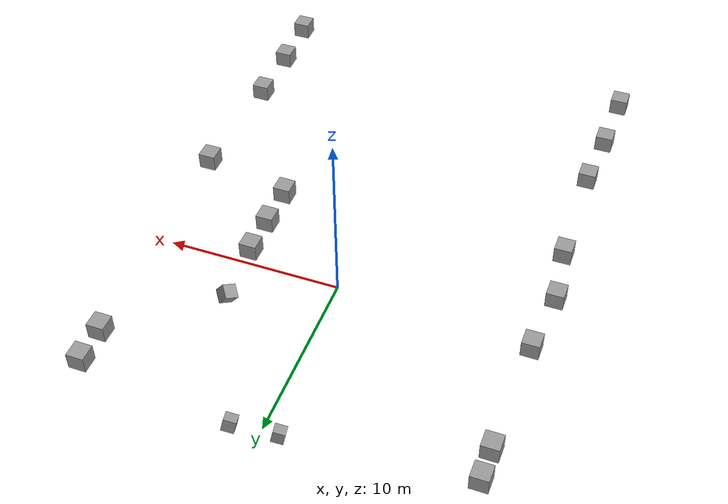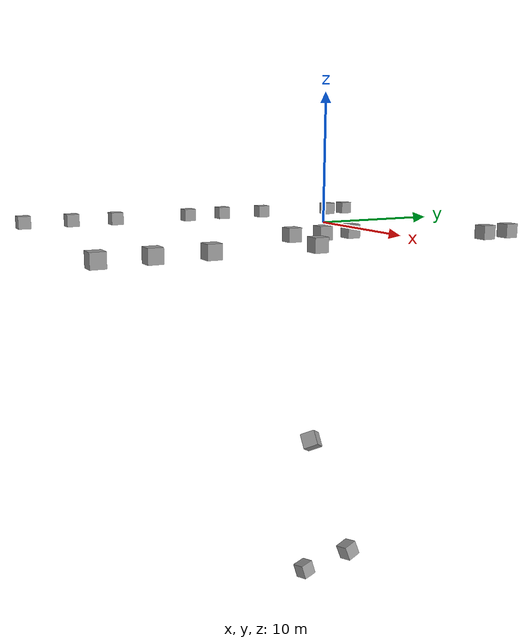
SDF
<sdf version="1.7">
 <world name="world">
  <model name="unit_box">
   <link name="link">
    <inertial>
     <mass>1</mass>
     <inertia>
      <ixx>0.166667</ixx>
      <ixy>0</ixy>
      <ixz>0</ixz>
      <iyy>0.166667</iyy>
      <iyz>0</iyz>
      <izz>0.166667</izz>
     </inertia>
    </inertial>
    <visual name="visual">
     <geometry><box><size>1 1 1</size></box></geometry>
     <material>
      <script><name>Gazebo/Grey</name><uri>file://media/materials/scripts/gazebo.material</uri></script>
      <shader type="pixel"><normal_map>__default__</normal_map></shader>
      <ambient>0.8 0.8 0.8 1</ambient>
      <diffuse>0.7 0.7 0.7 1</diffuse>
      <specular>0.01 0.01 0.01 1</specular>
      <emissive>0 0 0 1</emissive>
     </material>
    </visual>
    <collision name="collision">
     <geometry><box><size>1 1 1</size></box></geometry>
     <surface>
      <friction>
       <ode><mu>1</mu><mu2>1</mu2><fdir1>0 0 0</fdir1><slip1>0</slip1><slip2>0</slip2></ode>
       <torsional>
        <coefficient>1</coefficient>
        <patch_radius>0</patch_radius>
        <surface_radius>0</surface_radius>
        <use_patch_radius>1</use_patch_radius>
        <ode><slip>0</slip></ode>
       </torsional>
      </friction>
      <bounce><restitution_coefficient>0</restitution_coefficient><threshold>1e+06</threshold></bounce>
      <contact>
       <collide_without_contact>0</collide_without_contact>
       <collide_without_contact_bitmask>1</collide_without_contact_bitmask>
       <collide_bitmask>1</collide_bitmask>
       <ode>
        <soft_cfm>0</soft_cfm>
        <soft_erp>0.2</soft_erp>
        <kp>1e+13</kp>
        <kd>1</kd>
        <max_vel>0.01</max_vel>
        <min_depth>0</min_depth>
       </ode>
       <bullet>
        <split_impulse>1</split_impulse>
        <split_impulse_penetration_threshold>-0.01</split_impulse_penetration_threshold>
        <soft_cfm>0</soft_cfm>
        <soft_erp>0.2</soft_erp>
        <kp>1e+13</kp>
        <kd>1</kd>
       </bullet>
      </contact>
     </surface>
    </collision>
   </link>
   <static>1</static>
   <pose>7.61681 -5.87958 -24.7739 -1.38583 -0.219453 0.182002</pose>
  </model>
  <model name="unit_box_0">
   <link name="link">
    <inertial>
     <mass>1</mass>
     <inertia>
      <ixx>0.166667</ixx>
      <ixy>0</ixy>
      <ixz>0</ixz>
      <iyy>0.166667</iyy>
      <iyz>0</iyz>
      <izz>0.166667</izz>
     </inertia>
    </inertial>
    <visual name="visual">
     <geometry><box><size>1 1 1</size></box></geometry>
     <material>
      <script><name>Gazebo/Grey</name><uri>file://media/materials/scripts/gazebo.material</uri></script>
      <shader type="pixel"><normal_map>__default__</normal_map></shader>
      <ambient>0.8 0.8 0.8 1</ambient>
      <diffuse>0.7 0.7 0.7 1</diffuse>
      <specular>0.01 0.01 0.01 1</specular>
      <emissive>0 0 0 1</emissive>
     </material>
    </visual>
    <collision name="collision">
     <geometry><box><size>1 1 1</size></box></geometry>
     <surface>
      <friction>
       <ode><mu>1</mu><mu2>1</mu2><fdir1>0 0 0</fdir1><slip1>0</slip1><slip2>0</slip2></ode>
       <torsional>
        <coefficient>1</coefficient>
        <patch_radius>0</patch_radius>
        <surface_radius>0</surface_radius>
        <use_patch_radius>1</use_patch_radius>
        <ode><slip>0</slip></ode>
       </torsional>
      </friction>
      <bounce><restitution_coefficient>0</restitution_coefficient><threshold>1e+06</threshold></bounce>
      <contact>
       <collide_without_contact>0</collide_without_contact>
       <collide_without_contact_bitmask>1</collide_without_contact_bitmask>
       <collide_bitmask>1</collide_bitmask>
       <ode>
        <soft_cfm>0</soft_cfm>
        <soft_erp>0.2</soft_erp>
        <kp>1e+13</kp>
        <kd>1</kd>
        <max_vel>0.01</max_vel>
        <min_depth>0</min_depth>
       </ode>
       <bullet>
        <split_impulse>1</split_impulse>
        <split_impulse_penetration_threshold>-0.01</split_impulse_penetration_threshold>
        <soft_cfm>0</soft_cfm>
        <soft_erp>0.2</soft_erp>
        <kp>1e+13</kp>
        <kd>1</kd>
       </bullet>
      </contact>
     </surface>
    </collision>
   </link>
   <static>1</static>
   <pose>11.6284 -7.88913 -12.979 -0.536818 -0.409813 0.888293</pose>
  </model>
  <model name="unit_box_clone">
   <link name="link">
    <inertial>
     <mass>1</mass>
     <inertia>
      <ixx>0.166667</ixx>
      <ixy>0</ixy>
      <ixz>0</ixz>
      <iyy>0.166667</iyy>
      <iyz>0</iyz>
      <izz>0.166667</izz>
     </inertia>
    </inertial>
    <visual name="visual">
     <geometry><box><size>1 1 1</size></box></geometry>
     <material>
      <script><name>Gazebo/Grey</name><uri>file://media/materials/scripts/gazebo.material</uri></script>
      <shader type="pixel"><normal_map>__default__</normal_map></shader>
      <ambient>0.8 0.8 0.8 1</ambient>
      <diffuse>0.7 0.7 0.7 1</diffuse>
      <specular>0.01 0.01 0.01 1</specular>
      <emissive>0 0 0 1</emissive>
     </material>
    </visual>
    <collision name="collision">
     <geometry><box><size>1 1 1</size></box></geometry>
     <surface>
      <friction>
       <ode><mu>1</mu><mu2>1</mu2><fdir1>0 0 0</fdir1><slip1>0</slip1><slip2>0</slip2></ode>
       <torsional>
        <coefficient>1</coefficient>
        <patch_radius>0</patch_radius>
        <surface_radius>0</surface_radius>
        <use_patch_radius>1</use_patch_radius>
        <ode><slip>0</slip></ode>
       </torsional>
      </friction>
      <bounce><restitution_coefficient>0</restitution_coefficient><threshold>1e+06</threshold></bounce>
      <contact>
       <collide_without_contact>0</collide_without_contact>
       <collide_without_contact_bitmask>1</collide_without_contact_bitmask>
       <collide_bitmask>1</collide_bitmask>
       <ode>
        <soft_cfm>0</soft_cfm>
        <soft_erp>0.2</soft_erp>
        <kp>1e+13</kp>
        <kd>1</kd>
        <max_vel>0.01</max_vel>
        <min_depth>0</min_depth>
       </ode>
       <bullet>
        <split_impulse>1</split_impulse>
        <split_impulse_penetration_threshold>-0.01</split_impulse_penetration_threshold>
        <soft_cfm>0</soft_cfm>
        <soft_erp>0.2</soft_erp>
        <kp>1e+13</kp>
        <kd>1</kd>
       </bullet>
      </contact>
     </surface>
    </collision>
   </link>
   <static>1</static>
   <pose>10.5023 -4 -22.3227 -1.30638 -0.215624 0.16488</pose>
  </model>
  <model name="unit_box_1">
   <link name="link">
    <inertial>
     <mass>1</mass>
     <inertia>
      <ixx>0.166667</ixx>
      <ixy>0</ixy>
      <ixz>0</ixz>
      <iyy>0.166667</iyy>
      <iyz>0</iyz>
      <izz>0.166667</izz>
     </inertia>
    </inertial>
    <gravity>0</gravity>
    <visual name="visual">
     <geometry><box><size>1 1 1</size></box></geometry>
     <material>
      <script><name>Gazebo/Grey</name><uri>file://media/materials/scripts/gazebo.material</uri></script>
      <shader type="pixel"><normal_map>__default__</normal_map></shader>
      <ambient>0.8 0.8 0.8 1</ambient>
      <diffuse>0.7 0.7 0.7 1</diffuse>
      <specular>0.01 0.01 0.01 1</specular>
      <emissive>0 0 0 1</emissive>
     </material>
    </visual>
    <collision name="collision">
     <geometry><box><size>1 1 1</size></box></geometry>
     <surface>
      <friction>
       <ode><mu>1</mu><mu2>1</mu2><fdir1>0 0 0</fdir1><slip1>0</slip1><slip2>0</slip2></ode>
       <torsional>
        <coefficient>1</coefficient>
        <patch_radius>0</patch_radius>
        <surface_radius>0</surface_radius>
        <use_patch_radius>1</use_patch_radius>
        <ode><slip>0</slip></ode>
       </torsional>
      </friction>
      <bounce><restitution_coefficient>0</restitution_coefficient><threshold>1e+06</threshold></bounce>
      <contact>
       <collide_without_contact>0</collide_without_contact>
       <collide_without_contact_bitmask>1</collide_without_contact_bitmask>
       <collide_bitmask>1</collide_bitmask>
       <ode>
        <soft_cfm>0</soft_cfm>
        <soft_erp>0.2</soft_erp>
        <kp>1e+13</kp>
        <kd>1</kd>
        <max_vel>0.01</max_vel>
        <min_depth>0</min_depth>
       </ode>
       <bullet>
        <split_impulse>1</split_impulse>
        <split_impulse_penetration_threshold>-0.01</split_impulse_penetration_threshold>
        <soft_cfm>0</soft_cfm>
        <soft_erp>0.2</soft_erp>
        <kp>1e+13</kp>
        <kd>1</kd>
       </bullet>
      </contact>
     </surface>
    </collision>
   </link>
   <static>1</static>
   <pose>11.2103 -7.35762 0 0 -0 0</pose>
  </model>
  <model name="unit_box_1_clone">
   <link name="link">
    <inertial>
     <mass>1</mass>
     <inertia>
      <ixx>0.166667</ixx>
      <ixy>0</ixy>
      <ixz>0</ixz>
      <iyy>0.166667</iyy>
      <iyz>0</iyz>
      <izz>0.166667</izz>
     </inertia>
    </inertial>
    <gravity>0</gravity>
    <visual name="visual">
     <geometry><box><size>1 1 1</size></box></geometry>
     <material>
      <script><name>Gazebo/Grey</name><uri>file://media/materials/scripts/gazebo.material</uri></script>
      <shader type="pixel"><normal_map>__default__</normal_map></shader>
      <ambient>0.8 0.8 0.8 1</ambient>
      <diffuse>0.7 0.7 0.7 1</diffuse>
      <specular>0.01 0.01 0.01 1</specular>
      <emissive>0 0 0 1</emissive>
     </material>
    </visual>
    <collision name="collision">
     <geometry><box><size>1 1 1</size></box></geometry>
     <surface>
      <friction>
       <ode><mu>1</mu><mu2>1</mu2><fdir1>0 0 0</fdir1><slip1>0</slip1><slip2>0</slip2></ode>
       <torsional>
        <coefficient>1</coefficient>
        <patch_radius>0</patch_radius>
        <surface_radius>0</surface_radius>
        <use_patch_radius>1</use_patch_radius>
        <ode><slip>0</slip></ode>
       </torsional>
      </friction>
      <bounce><restitution_coefficient>0</restitution_coefficient><threshold>1e+06</threshold></bounce>
      <contact>
       <collide_without_contact>0</collide_without_contact>
       <collide_without_contact_bitmask>1</collide_without_contact_bitmask>
       <collide_bitmask>1</collide_bitmask>
       <ode>
        <soft_cfm>0</soft_cfm>
        <soft_erp>0.2</soft_erp>
        <kp>1e+13</kp>
        <kd>1</kd>
        <max_vel>0.01</max_vel>
        <min_depth>0</min_depth>
       </ode>
       <bullet>
        <split_impulse>1</split_impulse>
        <split_impulse_penetration_threshold>-0.01</split_impulse_penetration_threshold>
        <soft_cfm>0</soft_cfm>
        <soft_erp>0.2</soft_erp>
        <kp>1e+13</kp>
        <kd>1</kd>
       </bullet>
      </contact>
     </surface>
    </collision>
   </link>
   <static>1</static>
   <pose>10.9487 -14.6494 0 0 -0 0</pose>
  </model>
  <model name="unit_box_1_clone_0">
   <link name="link">
    <inertial>
     <mass>1</mass>
     <inertia>
      <ixx>0.166667</ixx>
      <ixy>0</ixy>
      <ixz>0</ixz>
      <iyy>0.166667</iyy>
      <iyz>0</iyz>
      <izz>0.166667</izz>
     </inertia>
    </inertial>
    <gravity>0</gravity>
    <visual name="visual">
     <geometry><box><size>1 1 1</size></box></geometry>
     <material>
      <script><name>Gazebo/Grey</name><uri>file://media/materials/scripts/gazebo.material</uri></script>
      <shader type="pixel"><normal_map>__default__</normal_map></shader>
      <ambient>0.8 0.8 0.8 1</ambient>
      <diffuse>0.7 0.7 0.7 1</diffuse>
      <specular>0.01 0.01 0.01 1</specular>
      <emissive>0 0 0 1</emissive>
     </material>
    </visual>
    <collision name="collision">
     <geometry><box><size>1 1 1</size></box></geometry>
     <surface>
      <friction>
       <ode><mu>1</mu><mu2>1</mu2><fdir1>0 0 0</fdir1><slip1>0</slip1><slip2>0</slip2></ode>
       <torsional>
        <coefficient>1</coefficient>
        <patch_radius>0</patch_radius>
        <surface_radius>0</surface_radius>
        <use_patch_radius>1</use_patch_radius>
        <ode><slip>0</slip></ode>
       </torsional>
      </friction>
      <bounce><restitution_coefficient>0</restitution_coefficient><threshold>1e+06</threshold></bounce>
      <contact>
       <collide_without_contact>0</collide_without_contact>
       <collide_without_contact_bitmask>1</collide_without_contact_bitmask>
       <collide_bitmask>1</collide_bitmask>
       <ode>
        <soft_cfm>0</soft_cfm>
        <soft_erp>0.2</soft_erp>
        <kp>1e+13</kp>
        <kd>1</kd>
        <max_vel>0.01</max_vel>
        <min_depth>0</min_depth>
       </ode>
       <bullet>
        <split_impulse>1</split_impulse>
        <split_impulse_penetration_threshold>-0.01</split_impulse_penetration_threshold>
        <soft_cfm>0</soft_cfm>
        <soft_erp>0.2</soft_erp>
        <kp>1e+13</kp>
        <kd>1</kd>
       </bullet>
      </contact>
     </surface>
    </collision>
   </link>
   <static>1</static>
   <pose>10.9833 -18.4104 0 0 -0 0</pose>
  </model>
  <model name="unit_box_1_clone_1">
   <link name="link">
    <inertial>
     <mass>1</mass>
     <inertia>
      <ixx>0.166667</ixx>
      <ixy>0</ixy>
      <ixz>0</ixz>
      <iyy>0.166667</iyy>
      <iyz>0</iyz>
      <izz>0.166667</izz>
     </inertia>
    </inertial>
    <gravity>0</gravity>
    <visual name="visual">
     <geometry><box><size>1 1 1</size></box></geometry>
     <material>
      <script><name>Gazebo/Grey</name><uri>file://media/materials/scripts/gazebo.material</uri></script>
      <shader type="pixel"><normal_map>__default__</normal_map></shader>
      <ambient>0.8 0.8 0.8 1</ambient>
      <diffuse>0.7 0.7 0.7 1</diffuse>
      <specular>0.01 0.01 0.01 1</specular>
      <emissive>0 0 0 1</emissive>
     </material>
    </visual>
    <collision name="collision">
     <geometry><box><size>1 1 1</size></box></geometry>
     <surface>
      <friction>
       <ode><mu>1</mu><mu2>1</mu2><fdir1>0 0 0</fdir1><slip1>0</slip1><slip2>0</slip2></ode>
       <torsional>
        <coefficient>1</coefficient>
        <patch_radius>0</patch_radius>
        <surface_radius>0</surface_radius>
        <use_patch_radius>1</use_patch_radius>
        <ode><slip>0</slip></ode>
       </torsional>
      </friction>
      <bounce><restitution_coefficient>0</restitution_coefficient><threshold>1e+06</threshold></bounce>
      <contact>
       <collide_without_contact>0</collide_without_contact>
       <collide_without_contact_bitmask>1</collide_without_contact_bitmask>
       <collide_bitmask>1</collide_bitmask>
       <ode>
        <soft_cfm>0</soft_cfm>
        <soft_erp>0.2</soft_erp>
        <kp>1e+13</kp>
        <kd>1</kd>
        <max_vel>0.01</max_vel>
        <min_depth>0</min_depth>
       </ode>
       <bullet>
        <split_impulse>1</split_impulse>
        <split_impulse_penetration_threshold>-0.01</split_impulse_penetration_threshold>
        <soft_cfm>0</soft_cfm>
        <soft_erp>0.2</soft_erp>
        <kp>1e+13</kp>
        <kd>1</kd>
       </bullet>
      </contact>
     </surface>
    </collision>
   </link>
   <static>1</static>
   <pose>11.1275 -21.8776 0 0 -0 0</pose>
  </model>
  <model name="unit_box_1_clone_2">
   <link name="link">
    <inertial>
     <mass>1</mass>
     <inertia>
      <ixx>0.166667</ixx>
      <ixy>0</ixy>
      <ixz>0</ixz>
      <iyy>0.166667</iyy>
      <iyz>0</iyz>
      <izz>0.166667</izz>
     </inertia>
    </inertial>
    <gravity>0</gravity>
    <visual name="visual">
     <geometry><box><size>1 1 1</size></box></geometry>
     <material>
      <script><name>Gazebo/Grey</name><uri>file://media/materials/scripts/gazebo.material</uri></script>
      <shader type="pixel"><normal_map>__default__</normal_map></shader>
      <ambient>0.8 0.8 0.8 1</ambient>
      <diffuse>0.7 0.7 0.7 1</diffuse>
      <specular>0.01 0.01 0.01 1</specular>
      <emissive>0 0 0 1</emissive>
     </material>
    </visual>
    <collision name="collision">
     <geometry><box><size>1 1 1</size></box></geometry>
     <surface>
      <friction>
       <ode><mu>1</mu><mu2>1</mu2><fdir1>0 0 0</fdir1><slip1>0</slip1><slip2>0</slip2></ode>
       <torsional>
        <coefficient>1</coefficient>
        <patch_radius>0</patch_radius>
        <surface_radius>0</surface_radius>
        <use_patch_radius>1</use_patch_radius>
        <ode><slip>0</slip></ode>
       </torsional>
      </friction>
      <bounce><restitution_coefficient>0</restitution_coefficient><threshold>1e+06</threshold></bounce>
      <contact>
       <collide_without_contact>0</collide_without_contact>
       <collide_without_contact_bitmask>1</collide_without_contact_bitmask>
       <collide_bitmask>1</collide_bitmask>
       <ode>
        <soft_cfm>0</soft_cfm>
        <soft_erp>0.2</soft_erp>
        <kp>1e+13</kp>
        <kd>1</kd>
        <max_vel>0.01</max_vel>
        <min_depth>0</min_depth>
       </ode>
       <bullet>
        <split_impulse>1</split_impulse>
        <split_impulse_penetration_threshold>-0.01</split_impulse_penetration_threshold>
        <soft_cfm>0</soft_cfm>
        <soft_erp>0.2</soft_erp>
        <kp>1e+13</kp>
        <kd>1</kd>
       </bullet>
      </contact>
     </surface>
    </collision>
   </link>
   <static>1</static>
   <pose>-10.9912 -21.1162 0 0 -0 0</pose>
  </model>
  <model name="unit_box_1_clone_3">
   <link name="link">
    <inertial>
     <mass>1</mass>
     <inertia>
      <ixx>0.166667</ixx>
      <ixy>0</ixy>
      <ixz>0</ixz>
      <iyy>0.166667</iyy>
      <iyz>0</iyz>
      <izz>0.166667</izz>
     </inertia>
    </inertial>
    <gravity>0</gravity>
    <visual name="visual">
     <geometry><box><size>1 1 1</size></box></geometry>
     <material>
      <script><name>Gazebo/Grey</name><uri>file://media/materials/scripts/gazebo.material</uri></script>
      <shader type="pixel"><normal_map>__default__</normal_map></shader>
      <ambient>0.8 0.8 0.8 1</ambient>
      <diffuse>0.7 0.7 0.7 1</diffuse>
      <specular>0.01 0.01 0.01 1</specular>
      <emissive>0 0 0 1</emissive>
     </material>
    </visual>
    <collision name="collision">
     <geometry><box><size>1 1 1</size></box></geometry>
     <surface>
      <friction>
       <ode><mu>1</mu><mu2>1</mu2><fdir1>0 0 0</fdir1><slip1>0</slip1><slip2>0</slip2></ode>
       <torsional>
        <coefficient>1</coefficient>
        <patch_radius>0</patch_radius>
        <surface_radius>0</surface_radius>
        <use_patch_radius>1</use_patch_radius>
        <ode><slip>0</slip></ode>
       </torsional>
      </friction>
      <bounce><restitution_coefficient>0</restitution_coefficient><threshold>1e+06</threshold></bounce>
      <contact>
       <collide_without_contact>0</collide_without_contact>
       <collide_without_contact_bitmask>1</collide_without_contact_bitmask>
       <collide_bitmask>1</collide_bitmask>
       <ode>
        <soft_cfm>0</soft_cfm>
        <soft_erp>0.2</soft_erp>
        <kp>1e+13</kp>
        <kd>1</kd>
        <max_vel>0.01</max_vel>
        <min_depth>0</min_depth>
       </ode>
       <bullet>
        <split_impulse>1</split_impulse>
        <split_impulse_penetration_threshold>-0.01</split_impulse_penetration_threshold>
        <soft_cfm>0</soft_cfm>
        <soft_erp>0.2</soft_erp>
        <kp>1e+13</kp>
        <kd>1</kd>
       </bullet>
      </contact>
     </surface>
    </collision>
   </link>
   <static>1</static>
   <pose>-10.9094 -17.2453 0 0 -0 0</pose>
  </model>
  <model name="unit_box_1_clone_4">
   <link name="link">
    <inertial>
     <mass>1</mass>
     <inertia>
      <ixx>0.166667</ixx>
      <ixy>0</ixy>
      <ixz>0</ixz>
      <iyy>0.166667</iyy>
      <iyz>0</iyz>
      <izz>0.166667</izz>
     </inertia>
    </inertial>
    <gravity>0</gravity>
    <visual name="visual">
     <geometry><box><size>1 1 1</size></box></geometry>
     <material>
      <script><name>Gazebo/Grey</name><uri>file://media/materials/scripts/gazebo.material</uri></script>
      <shader type="pixel"><normal_map>__default__</normal_map></shader>
      <ambient>0.8 0.8 0.8 1</ambient>
      <diffuse>0.7 0.7 0.7 1</diffuse>
      <specular>0.01 0.01 0.01 1</specular>
      <emissive>0 0 0 1</emissive>
     </material>
    </visual>
    <collision name="collision">
     <geometry><box><size>1 1 1</size></box></geometry>
     <surface>
      <friction>
       <ode><mu>1</mu><mu2>1</mu2><fdir1>0 0 0</fdir1><slip1>0</slip1><slip2>0</slip2></ode>
       <torsional>
        <coefficient>1</coefficient>
        <patch_radius>0</patch_radius>
        <surface_radius>0</surface_radius>
        <use_patch_radius>1</use_patch_radius>
        <ode><slip>0</slip></ode>
       </torsional>
      </friction>
      <bounce><restitution_coefficient>0</restitution_coefficient><threshold>1e+06</threshold></bounce>
      <contact>
       <collide_without_contact>0</collide_without_contact>
       <collide_without_contact_bitmask>1</collide_without_contact_bitmask>
       <collide_bitmask>1</collide_bitmask>
       <ode>
        <soft_cfm>0</soft_cfm>
        <soft_erp>0.2</soft_erp>
        <kp>1e+13</kp>
        <kd>1</kd>
        <max_vel>0.01</max_vel>
        <min_depth>0</min_depth>
       </ode>
       <bullet>
        <split_impulse>1</split_impulse>
        <split_impulse_penetration_threshold>-0.01</split_impulse_penetration_threshold>
        <soft_cfm>0</soft_cfm>
        <soft_erp>0.2</soft_erp>
        <kp>1e+13</kp>
        <kd>1</kd>
       </bullet>
      </contact>
     </surface>
    </collision>
   </link>
   <static>1</static>
   <pose>-10.7007 -13.5913 0 0 -0 0</pose>
  </model>
  <model name="unit_box_1_clone_5">
   <link name="link">
    <inertial>
     <mass>1</mass>
     <inertia>
      <ixx>0.166667</ixx>
      <ixy>0</ixy>
      <ixz>0</ixz>
      <iyy>0.166667</iyy>
      <iyz>0</iyz>
      <izz>0.166667</izz>
     </inertia>
    </inertial>
    <gravity>0</gravity>
    <visual name="visual">
     <geometry><box><size>1 1 1</size></box></geometry>
     <material>
      <script><name>Gazebo/Grey</name><uri>file://media/materials/scripts/gazebo.material</uri></script>
      <shader type="pixel"><normal_map>__default__</normal_map></shader>
      <ambient>0.8 0.8 0.8 1</ambient>
      <diffuse>0.7 0.7 0.7 1</diffuse>
      <specular>0.01 0.01 0.01 1</specular>
      <emissive>0 0 0 1</emissive>
     </material>
    </visual>
    <collision name="collision">
     <geometry><box><size>1 1 1</size></box></geometry>
     <surface>
      <friction>
       <ode><mu>1</mu><mu2>1</mu2><fdir1>0 0 0</fdir1><slip1>0</slip1><slip2>0</slip2></ode>
       <torsional>
        <coefficient>1</coefficient>
        <patch_radius>0</patch_radius>
        <surface_radius>0</surface_radius>
        <use_patch_radius>1</use_patch_radius>
        <ode><slip>0</slip></ode>
       </torsional>
      </friction>
      <bounce><restitution_coefficient>0</restitution_coefficient><threshold>1e+06</threshold></bounce>
      <contact>
       <collide_without_contact>0</collide_without_contact>
       <collide_without_contact_bitmask>1</collide_without_contact_bitmask>
       <collide_bitmask>1</collide_bitmask>
       <ode>
        <soft_cfm>0</soft_cfm>
        <soft_erp>0.2</soft_erp>
        <kp>1e+13</kp>
        <kd>1</kd>
        <max_vel>0.01</max_vel>
        <min_depth>0</min_depth>
       </ode>
       <bullet>
        <split_impulse>1</split_impulse>
        <split_impulse_penetration_threshold>-0.01</split_impulse_penetration_threshold>
        <soft_cfm>0</soft_cfm>
        <soft_erp>0.2</soft_erp>
        <kp>1e+13</kp>
        <kd>1</kd>
       </bullet>
      </contact>
     </surface>
    </collision>
   </link>
   <static>1</static>
   <pose>-10.8907 -7.0204 0 0 -0 0</pose>
  </model>
  <model name="unit_box_1_clone_6">
   <link name="link">
    <inertial>
     <mass>1</mass>
     <inertia>
      <ixx>0.166667</ixx>
      <ixy>0</ixy>
      <ixz>0</ixz>
      <iyy>0.166667</iyy>
      <iyz>0</iyz>
      <izz>0.166667</izz>
     </inertia>
    </inertial>
    <gravity>0</gravity>
    <visual name="visual">
     <geometry><box><size>1 1 1</size></box></geometry>
     <material>
      <script><name>Gazebo/Grey</name><uri>file://media/materials/scripts/gazebo.material</uri></script>
      <shader type="pixel"><normal_map>__default__</normal_map></shader>
      <ambient>0.8 0.8 0.8 1</ambient>
      <diffuse>0.7 0.7 0.7 1</diffuse>
      <specular>0.01 0.01 0.01 1</specular>
      <emissive>0 0 0 1</emissive>
     </material>
    </visual>
    <collision name="collision">
     <geometry><box><size>1 1 1</size></box></geometry>
     <surface>
      <friction>
       <ode><mu>1</mu><mu2>1</mu2><fdir1>0 0 0</fdir1><slip1>0</slip1><slip2>0</slip2></ode>
       <torsional>
        <coefficient>1</coefficient>
        <patch_radius>0</patch_radius>
        <surface_radius>0</surface_radius>
        <use_patch_radius>1</use_patch_radius>
        <ode><slip>0</slip></ode>
       </torsional>
      </friction>
      <bounce><restitution_coefficient>0</restitution_coefficient><threshold>1e+06</threshold></bounce>
      <contact>
       <collide_without_contact>0</collide_without_contact>
       <collide_without_contact_bitmask>1</collide_without_contact_bitmask>
       <collide_bitmask>1</collide_bitmask>
       <ode>
        <soft_cfm>0</soft_cfm>
        <soft_erp>0.2</soft_erp>
        <kp>1e+13</kp>
        <kd>1</kd>
        <max_vel>0.01</max_vel>
        <min_depth>0</min_depth>
       </ode>
       <bullet>
        <split_impulse>1</split_impulse>
        <split_impulse_penetration_threshold>-0.01</split_impulse_penetration_threshold>
        <soft_cfm>0</soft_cfm>
        <soft_erp>0.2</soft_erp>
        <kp>1e+13</kp>
        <kd>1</kd>
       </bullet>
      </contact>
     </surface>
    </collision>
   </link>
   <static>1</static>
   <pose>-11.3118 -3.5762 0 0 -0 0</pose>
  </model>
  <model name="unit_box_1_clone_7">
   <link name="link">
    <inertial>
     <mass>1</mass>
     <inertia>
      <ixx>0.166667</ixx>
      <ixy>0</ixy>
      <ixz>0</ixz>
      <iyy>0.166667</iyy>
      <iyz>0</iyz>
      <izz>0.166667</izz>
     </inertia>
    </inertial>
    <gravity>0</gravity>
    <visual name="visual">
     <geometry><box><size>1 1 1</size></box></geometry>
     <material>
      <script><name>Gazebo/Grey</name><uri>file://media/materials/scripts/gazebo.material</uri></script>
      <shader type="pixel"><normal_map>__default__</normal_map></shader>
      <ambient>0.8 0.8 0.8 1</ambient>
      <diffuse>0.7 0.7 0.7 1</diffuse>
      <specular>0.01 0.01 0.01 1</specular>
      <emissive>0 0 0 1</emissive>
     </material>
    </visual>
    <collision name="collision">
     <geometry><box><size>1 1 1</size></box></geometry>
     <surface>
      <friction>
       <ode><mu>1</mu><mu2>1</mu2><fdir1>0 0 0</fdir1><slip1>0</slip1><slip2>0</slip2></ode>
       <torsional>
        <coefficient>1</coefficient>
        <patch_radius>0</patch_radius>
        <surface_radius>0</surface_radius>
        <use_patch_radius>1</use_patch_radius>
        <ode><slip>0</slip></ode>
       </torsional>
      </friction>
      <bounce><restitution_coefficient>0</restitution_coefficient><threshold>1e+06</threshold></bounce>
      <contact>
       <collide_without_contact>0</collide_without_contact>
       <collide_without_contact_bitmask>1</collide_without_contact_bitmask>
       <collide_bitmask>1</collide_bitmask>
       <ode>
        <soft_cfm>0</soft_cfm>
        <soft_erp>0.2</soft_erp>
        <kp>1e+13</kp>
        <kd>1</kd>
        <max_vel>0.01</max_vel>
        <min_depth>0</min_depth>
       </ode>
       <bullet>
        <split_impulse>1</split_impulse>
        <split_impulse_penetration_threshold>-0.01</split_impulse_penetration_threshold>
        <soft_cfm>0</soft_cfm>
        <soft_erp>0.2</soft_erp>
        <kp>1e+13</kp>
        <kd>1</kd>
       </bullet>
      </contact>
     </surface>
    </collision>
   </link>
   <static>1</static>
   <pose>-10.9782 0.216109 0 0 -0 0</pose>
  </model>
  <model name="unit_box_1_clone_8">
   <link name="link">
    <inertial>
     <mass>1</mass>
     <inertia>
      <ixx>0.166667</ixx>
      <ixy>0</ixy>
      <ixz>0</ixz>
      <iyy>0.166667</iyy>
      <iyz>0</iyz>
      <izz>0.166667</izz>
     </inertia>
    </inertial>
    <gravity>0</gravity>
    <visual name="visual">
     <geometry><box><size>1 1 1</size></box></geometry>
     <material>
      <script><name>Gazebo/Grey</name><uri>file://media/materials/scripts/gazebo.material</uri></script>
      <shader type="pixel"><normal_map>__default__</normal_map></shader>
      <ambient>0.8 0.8 0.8 1</ambient>
      <diffuse>0.7 0.7 0.7 1</diffuse>
      <specular>0.01 0.01 0.01 1</specular>
      <emissive>0 0 0 1</emissive>
     </material>
    </visual>
    <collision name="collision">
     <geometry><box><size>1 1 1</size></box></geometry>
     <surface>
      <friction>
       <ode><mu>1</mu><mu2>1</mu2><fdir1>0 0 0</fdir1><slip1>0</slip1><slip2>0</slip2></ode>
       <torsional>
        <coefficient>1</coefficient>
        <patch_radius>0</patch_radius>
        <surface_radius>0</surface_radius>
        <use_patch_radius>1</use_patch_radius>
        <ode><slip>0</slip></ode>
       </torsional>
      </friction>
      <bounce><restitution_coefficient>0</restitution_coefficient><threshold>1e+06</threshold></bounce>
      <contact>
       <collide_without_contact>0</collide_without_contact>
       <collide_without_contact_bitmask>1</collide_without_contact_bitmask>
       <collide_bitmask>1</collide_bitmask>
       <ode>
        <soft_cfm>0</soft_cfm>
        <soft_erp>0.2</soft_erp>
        <kp>1e+13</kp>
        <kd>1</kd>
        <max_vel>0.01</max_vel>
        <min_depth>0</min_depth>
       </ode>
       <bullet>
        <split_impulse>1</split_impulse>
        <split_impulse_penetration_threshold>-0.01</split_impulse_penetration_threshold>
        <soft_cfm>0</soft_cfm>
        <soft_erp>0.2</soft_erp>
        <kp>1e+13</kp>
        <kd>1</kd>
       </bullet>
      </contact>
     </surface>
    </collision>
   </link>
   <static>1</static>
   <pose>-10.8293 7.08598 0 0 -0 0</pose>
  </model>
  <model name="unit_box_1_clone_9">
   <link name="link">
    <inertial>
     <mass>1</mass>
     <inertia>
      <ixx>0.166667</ixx>
      <ixy>0</ixy>
      <ixz>0</ixz>
      <iyy>0.166667</iyy>
      <iyz>0</iyz>
      <izz>0.166667</izz>
     </inertia>
    </inertial>
    <gravity>0</gravity>
    <visual name="visual">
     <geometry><box><size>1 1 1</size></box></geometry>
     <material>
      <script><name>Gazebo/Grey</name><uri>file://media/materials/scripts/gazebo.material</uri></script>
      <shader type="pixel"><normal_map>__default__</normal_map></shader>
      <ambient>0.8 0.8 0.8 1</ambient>
      <diffuse>0.7 0.7 0.7 1</diffuse>
      <specular>0.01 0.01 0.01 1</specular>
      <emissive>0 0 0 1</emissive>
     </material>
    </visual>
    <collision name="collision">
     <geometry><box><size>1 1 1</size></box></geometry>
     <surface>
      <friction>
       <ode><mu>1</mu><mu2>1</mu2><fdir1>0 0 0</fdir1><slip1>0</slip1><slip2>0</slip2></ode>
       <torsional>
        <coefficient>1</coefficient>
        <patch_radius>0</patch_radius>
        <surface_radius>0</surface_radius>
        <use_patch_radius>1</use_patch_radius>
        <ode><slip>0</slip></ode>
       </torsional>
      </friction>
      <bounce><restitution_coefficient>0</restitution_coefficient><threshold>1e+06</threshold></bounce>
      <contact>
       <collide_without_contact>0</collide_without_contact>
       <collide_without_contact_bitmask>1</collide_without_contact_bitmask>
       <collide_bitmask>1</collide_bitmask>
       <ode>
        <soft_cfm>0</soft_cfm>
        <soft_erp>0.2</soft_erp>
        <kp>1e+13</kp>
        <kd>1</kd>
        <max_vel>0.01</max_vel>
        <min_depth>0</min_depth>
       </ode>
       <bullet>
        <split_impulse>1</split_impulse>
        <split_impulse_penetration_threshold>-0.01</split_impulse_penetration_threshold>
        <soft_cfm>0</soft_cfm>
        <soft_erp>0.2</soft_erp>
        <kp>1e+13</kp>
        <kd>1</kd>
       </bullet>
      </contact>
     </surface>
    </collision>
   </link>
   <static>1</static>
   <pose>-10.8525 8.92745 0 0 -0 0</pose>
  </model>
  <model name="unit_box_1_clone_10">
   <link name="link">
    <inertial>
     <mass>1</mass>
     <inertia>
      <ixx>0.166667</ixx>
      <ixy>0</ixy>
      <ixz>0</ixz>
      <iyy>0.166667</iyy>
      <iyz>0</iyz>
      <izz>0.166667</izz>
     </inertia>
    </inertial>
    <gravity>0</gravity>
    <visual name="visual">
     <geometry><box><size>1 1 1</size></box></geometry>
     <material>
      <script><name>Gazebo/Grey</name><uri>file://media/materials/scripts/gazebo.material</uri></script>
      <shader type="pixel"><normal_map>__default__</normal_map></shader>
      <ambient>0.8 0.8 0.8 1</ambient>
      <diffuse>0.7 0.7 0.7 1</diffuse>
      <specular>0.01 0.01 0.01 1</specular>
      <emissive>0 0 0 1</emissive>
     </material>
    </visual>
    <collision name="collision">
     <geometry><box><size>1 1 1</size></box></geometry>
     <surface>
      <friction>
       <ode><mu>1</mu><mu2>1</mu2><fdir1>0 0 0</fdir1><slip1>0</slip1><slip2>0</slip2></ode>
       <torsional>
        <coefficient>1</coefficient>
        <patch_radius>0</patch_radius>
        <surface_radius>0</surface_radius>
        <use_patch_radius>1</use_patch_radius>
        <ode><slip>0</slip></ode>
       </torsional>
      </friction>
      <bounce><restitution_coefficient>0</restitution_coefficient><threshold>1e+06</threshold></bounce>
      <contact>
       <collide_without_contact>0</collide_without_contact>
       <collide_without_contact_bitmask>1</collide_without_contact_bitmask>
       <collide_bitmask>1</collide_bitmask>
       <ode>
        <soft_cfm>0</soft_cfm>
        <soft_erp>0.2</soft_erp>
        <kp>1e+13</kp>
        <kd>1</kd>
        <max_vel>0.01</max_vel>
        <min_depth>0</min_depth>
       </ode>
       <bullet>
        <split_impulse>1</split_impulse>
        <split_impulse_penetration_threshold>-0.01</split_impulse_penetration_threshold>
        <soft_cfm>0</soft_cfm>
        <soft_erp>0.2</soft_erp>
        <kp>1e+13</kp>
        <kd>1</kd>
       </bullet>
      </contact>
     </surface>
    </collision>
   </link>
   <static>1</static>
   <pose>10.6938 9.04989 0 0 -0 0</pose>
  </model>
  <model name="unit_box_1_clone_11">
   <link name="link">
    <inertial>
     <mass>1</mass>
     <inertia>
      <ixx>0.166667</ixx>
      <ixy>0</ixy>
      <ixz>0</ixz>
      <iyy>0.166667</iyy>
      <iyz>0</iyz>
      <izz>0.166667</izz>
     </inertia>
    </inertial>
    <gravity>0</gravity>
    <visual name="visual">
     <geometry><box><size>1 1 1</size></box></geometry>
     <material>
      <script><name>Gazebo/Grey</name><uri>file://media/materials/scripts/gazebo.material</uri></script>
      <shader type="pixel"><normal_map>__default__</normal_map></shader>
      <ambient>0.8 0.8 0.8 1</ambient>
      <diffuse>0.7 0.7 0.7 1</diffuse>
      <specular>0.01 0.01 0.01 1</specular>
      <emissive>0 0 0 1</emissive>
     </material>
    </visual>
    <collision name="collision">
     <geometry><box><size>1 1 1</size></box></geometry>
     <surface>
      <friction>
       <ode><mu>1</mu><mu2>1</mu2><fdir1>0 0 0</fdir1><slip1>0</slip1><slip2>0</slip2></ode>
       <torsional>
        <coefficient>1</coefficient>
        <patch_radius>0</patch_radius>
        <surface_radius>0</surface_radius>
        <use_patch_radius>1</use_patch_radius>
        <ode><slip>0</slip></ode>
       </torsional>
      </friction>
      <bounce><restitution_coefficient>0</restitution_coefficient><threshold>1e+06</threshold></bounce>
      <contact>
       <collide_without_contact>0</collide_without_contact>
       <collide_without_contact_bitmask>1</collide_without_contact_bitmask>
       <collide_bitmask>1</collide_bitmask>
       <ode>
        <soft_cfm>0</soft_cfm>
        <soft_erp>0.2</soft_erp>
        <kp>1e+13</kp>
        <kd>1</kd>
        <max_vel>0.01</max_vel>
        <min_depth>0</min_depth>
       </ode>
       <bullet>
        <split_impulse>1</split_impulse>
        <split_impulse_penetration_threshold>-0.01</split_impulse_penetration_threshold>
        <soft_cfm>0</soft_cfm>
        <soft_erp>0.2</soft_erp>
        <kp>1e+13</kp>
        <kd>1</kd>
       </bullet>
      </contact>
     </surface>
    </collision>
   </link>
   <static>1</static>
   <pose>10.7499 6.90759 0 0 -0 0</pose>
  </model>
  <model name="unit_box_1_clone_12">
   <link name="link">
    <inertial>
     <mass>1</mass>
     <inertia>
      <ixx>0.166667</ixx>
      <ixy>0</ixy>
      <ixz>0</ixz>
      <iyy>0.166667</iyy>
      <iyz>0</iyz>
      <izz>0.166667</izz>
     </inertia>
    </inertial>
    <gravity>0</gravity>
    <visual name="visual">
     <geometry><box><size>1 1 1</size></box></geometry>
     <material>
      <script><name>Gazebo/Grey</name><uri>file://media/materials/scripts/gazebo.material</uri></script>
      <shader type="pixel"><normal_map>__default__</normal_map></shader>
      <ambient>0.8 0.8 0.8 1</ambient>
      <diffuse>0.7 0.7 0.7 1</diffuse>
      <specular>0.01 0.01 0.01 1</specular>
      <emissive>0 0 0 1</emissive>
     </material>
    </visual>
    <collision name="collision">
     <geometry><box><size>1 1 1</size></box></geometry>
     <surface>
      <friction>
       <ode><mu>1</mu><mu2>1</mu2><fdir1>0 0 0</fdir1><slip1>0</slip1><slip2>0</slip2></ode>
       <torsional>
        <coefficient>1</coefficient>
        <patch_radius>0</patch_radius>
        <surface_radius>0</surface_radius>
        <use_patch_radius>1</use_patch_radius>
        <ode><slip>0</slip></ode>
       </torsional>
      </friction>
      <bounce><restitution_coefficient>0</restitution_coefficient><threshold>1e+06</threshold></bounce>
      <contact>
       <collide_without_contact>0</collide_without_contact>
       <collide_without_contact_bitmask>1</collide_without_contact_bitmask>
       <collide_bitmask>1</collide_bitmask>
       <ode>
        <soft_cfm>0</soft_cfm>
        <soft_erp>0.2</soft_erp>
        <kp>1e+13</kp>
        <kd>1</kd>
        <max_vel>0.01</max_vel>
        <min_depth>0</min_depth>
       </ode>
       <bullet>
        <split_impulse>1</split_impulse>
        <split_impulse_penetration_threshold>-0.01</split_impulse_penetration_threshold>
        <soft_cfm>0</soft_cfm>
        <soft_erp>0.2</soft_erp>
        <kp>1e+13</kp>
        <kd>1</kd>
       </bullet>
      </contact>
     </surface>
    </collision>
   </link>
   <static>1</static>
   <pose>5.74588 -1.27683 0 0 -0 0</pose>
  </model>
  <model name="unit_box_1_clone_13">
   <link name="link">
    <inertial>
     <mass>1</mass>
     <inertia>
      <ixx>0.166667</ixx>
      <ixy>0</ixy>
      <ixz>0</ixz>
      <iyy>0.166667</iyy>
      <iyz>0</iyz>
      <izz>0.166667</izz>
     </inertia>
    </inertial>
    <gravity>0</gravity>
    <visual name="visual">
     <geometry><box><size>1 1 1</size></box></geometry>
     <material>
      <script><name>Gazebo/Grey</name><uri>file://media/materials/scripts/gazebo.material</uri></script>
      <shader type="pixel"><normal_map>__default__</normal_map></shader>
      <ambient>0.8 0.8 0.8 1</ambient>
      <diffuse>0.7 0.7 0.7 1</diffuse>
      <specular>0.01 0.01 0.01 1</specular>
      <emissive>0 0 0 1</emissive>
     </material>
    </visual>
    <collision name="collision">
     <geometry><box><size>1 1 1</size></box></geometry>
     <surface>
      <friction>
       <ode><mu>1</mu><mu2>1</mu2><fdir1>0 0 0</fdir1><slip1>0</slip1><slip2>0</slip2></ode>
       <torsional>
        <coefficient>1</coefficient>
        <patch_radius>0</patch_radius>
        <surface_radius>0</surface_radius>
        <use_patch_radius>1</use_patch_radius>
        <ode><slip>0</slip></ode>
       </torsional>
      </friction>
      <bounce><restitution_coefficient>0</restitution_coefficient><threshold>1e+06</threshold></bounce>
      <contact>
       <collide_without_contact>0</collide_without_contact>
       <collide_without_contact_bitmask>1</collide_without_contact_bitmask>
       <collide_bitmask>1</collide_bitmask>
       <ode>
        <soft_cfm>0</soft_cfm>
        <soft_erp>0.2</soft_erp>
        <kp>1e+13</kp>
        <kd>1</kd>
        <max_vel>0.01</max_vel>
        <min_depth>0</min_depth>
       </ode>
       <bullet>
        <split_impulse>1</split_impulse>
        <split_impulse_penetration_threshold>-0.01</split_impulse_penetration_threshold>
        <soft_cfm>0</soft_cfm>
        <soft_erp>0.2</soft_erp>
        <kp>1e+13</kp>
        <kd>1</kd>
       </bullet>
      </contact>
     </surface>
    </collision>
   </link>
   <static>1</static>
   <pose>5.78128 -3.64145 0 0 -0 0</pose>
  </model>
  <model name="unit_box_1_clone_14">
   <link name="link">
    <inertial>
     <mass>1</mass>
     <inertia>
      <ixx>0.166667</ixx>
      <ixy>0</ixy>
      <ixz>0</ixz>
      <iyy>0.166667</iyy>
      <iyz>0</iyz>
      <izz>0.166667</izz>
     </inertia>
    </inertial>
    <gravity>0</gravity>
    <visual name="visual">
     <geometry><box><size>1 1 1</size></box></geometry>
     <material>
      <script><name>Gazebo/Grey</name><uri>file://media/materials/scripts/gazebo.material</uri></script>
      <shader type="pixel"><normal_map>__default__</normal_map></shader>
      <ambient>0.8 0.8 0.8 1</ambient>
      <diffuse>0.7 0.7 0.7 1</diffuse>
      <specular>0.01 0.01 0.01 1</specular>
      <emissive>0 0 0 1</emissive>
     </material>
    </visual>
    <collision name="collision">
     <geometry><box><size>1 1 1</size></box></geometry>
     <surface>
      <friction>
       <ode><mu>1</mu><mu2>1</mu2><fdir1>0 0 0</fdir1><slip1>0</slip1><slip2>0</slip2></ode>
       <torsional>
        <coefficient>1</coefficient>
        <patch_radius>0</patch_radius>
        <surface_radius>0</surface_radius>
        <use_patch_radius>1</use_patch_radius>
        <ode><slip>0</slip></ode>
       </torsional>
      </friction>
      <bounce><restitution_coefficient>0</restitution_coefficient><threshold>1e+06</threshold></bounce>
      <contact>
       <collide_without_contact>0</collide_without_contact>
       <collide_without_contact_bitmask>1</collide_without_contact_bitmask>
       <collide_bitmask>1</collide_bitmask>
       <ode>
        <soft_cfm>0</soft_cfm>
        <soft_erp>0.2</soft_erp>
        <kp>1e+13</kp>
        <kd>1</kd>
        <max_vel>0.01</max_vel>
        <min_depth>0</min_depth>
       </ode>
       <bullet>
        <split_impulse>1</split_impulse>
        <split_impulse_penetration_threshold>-0.01</split_impulse_penetration_threshold>
        <soft_cfm>0</soft_cfm>
        <soft_erp>0.2</soft_erp>
        <kp>1e+13</kp>
        <kd>1</kd>
       </bullet>
      </contact>
     </surface>
    </collision>
   </link>
   <static>1</static>
   <pose>5.80623 -6.17883 0 0 -0 0</pose>
  </model>
 </world>
</sdf>
